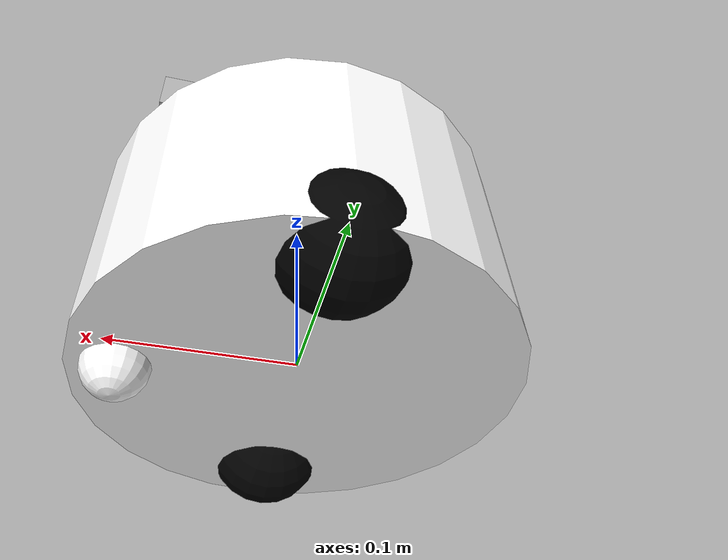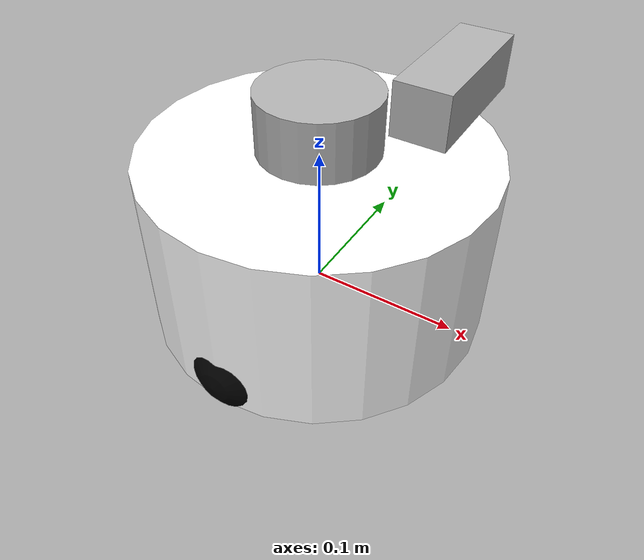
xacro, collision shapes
<?xml version="1.0"?>
<robot xmlns:xacro="http://www.ros.org/wiki/xacro"  name="robot">

    <xacro:arg name="sim_mode" default="false"/>

    <xacro:include filename="robot_core.xacro" />
    <xacro:include filename="ros2_control.xacro" />
    <xacro:include filename="lidar.xacro" />
    <xacro:include filename="camera.xacro" />

</robot>

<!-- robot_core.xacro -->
<robot xmlns:xacro="http://www.ros.org/wiki/xacro" >

    <xacro:include filename="inertial_macros.xacro"/>

    <material name="white">
        <color rgba="1 1 1 1" />
    </material>

    <material name="orange">
        <color rgba="1 0.3 0.1 1"/>
    </material>

    <material name="gray">
        <color rgba="0.7 0.7 0.7 1"/>
    </material>

    <material name="black">
        <color rgba="0 0 0 1"/>
    </material>

    <material name="red">
        <color rgba="1 0 0 1"/>
    </material>

    <!-- BASE LINK -->

    <link name="base_link">

    </link>

    <!-- CHASSIS LINK -->

    <joint name="chassis_joint" type="fixed">
        <parent link="base_link"/>
        <child link="chassis"/>
        <origin xyz="0 0 0"/>
    </joint>

    <link name="chassis">
        <visual>
            <origin xyz="0 0 -0.014" rpy="0 0 ${pi}"/>
            <geometry>
                <mesh filename="file:///$(find dhtbot_one)/meshes/base_link.STL" scale="1 1 1"/>
            </geometry>
            <material name="white"/>
        </visual>
        <collision>
            <origin xyz="0 0 0.045"/>
            <geometry>
                <cylinder radius="0.115" length="0.12"/>
            </geometry>
        </collision>
        <xacro:inertial_cylinder mass="1.0" length="0.12" radius="0.115">
            <origin xyz="0.03 0 0" rpy="0 0 0"/>
        </xacro:inertial_cylinder>
    </link>

    <gazebo reference="chassis">
        <material>Gazebo/White</material>
    </gazebo>

    <!-- LEFT WHEEL LINK -->

    <joint name="left_wheel_joint" type="continuous">
        <parent link="base_link"/>
        <child link="left_wheel"/>
        <origin xyz="0 0.0875 0" rpy="-${pi/2} 0 0"/>
        <axis xyz="0 0 1"/>
    </joint>

    <link name="left_wheel">
        <visual>
            <geometry>
                <cylinder radius="0.0325" length="0.025"/>
            </geometry>
            <material name="black"/>
        </visual>
        <collision>
            <geometry>
                <sphere radius="0.0325"/>
            </geometry>
        </collision>
        <xacro:inertial_sphere mass="0.1" radius="0.0325">
            <origin xyz="0 0 0" rpy="0 0 0"/>
        </xacro:inertial_sphere>
    </link>

    <gazebo reference="left_wheel">
        <material>Gazebo/Black</material>
        <mu1 value="1.0"/>
        <mu2 value="1.0"/>
    </gazebo>

    <!-- RIGHT WHEEL LINK -->

    <joint name="right_wheel_joint" type="continuous">
        <parent link="base_link"/>
        <child link="right_wheel"/>
        <origin xyz="0 -0.0875 0" rpy="${pi/2} 0 0"/>
        <axis xyz="0 0 -1"/>
    </joint>

    <link name="right_wheel">
        <visual>
            <geometry>
                <cylinder radius="0.0325" length="0.025"/>
            </geometry>
            <material name="black"/>
        </visual>
        <collision>
            <geometry>
                <sphere radius="0.0325"/>
            </geometry>
        </collision>
        <xacro:inertial_sphere mass="0.1" radius="0.0325">
            <origin xyz="0 0 0" rpy="0 0 0"/>
        </xacro:inertial_sphere>
    </link>

    <gazebo reference="right_wheel">
        <material>Gazebo/Black</material>
        <mu1 value="1.0"/>
        <mu2 value="1.0"/>
    </gazebo>

    <!-- CASTER WHEEL LINK -->

    <joint name="caster_wheel_joint" type="fixed">
        <parent link="chassis"/>
        <child link="caster_wheel"/>
        <origin xyz="0.09 0 -0.015"/>
    </joint>

    <link name="caster_wheel">
        <visual>
            <geometry>
                <mesh filename="file:///$(find dhtbot_one)/meshes/caster_wheel_link.STL" />-
            </geometry>
            <material name="white"/>
        </visual>
        <collision>
            <geometry>
                <sphere radius="0.0175"/>
            </geometry>
        </collision>
        <xacro:inertial_sphere mass="0.05" radius="0.0175">
            <origin xyz="0 0 0" rpy="0 0 0"/>
        </xacro:inertial_sphere>
    </link>

    <gazebo reference="caster_wheel">
        <material>Gazebo/Black</material>
        <mu1 value="0.001"/>
        <mu2 value="0.001"/>
    </gazebo>

</robot>

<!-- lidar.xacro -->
<robot xmlns:xacro="http://www.ros.org/wiki/xacro" >

    <joint name="laser_joint" type="fixed">
        <parent link="chassis"/>
        <child link="laser_frame"/>
        <origin xyz="0 0 0.13" rpy="0 0 0"/>
    </joint>

    <link name="laser_frame">
        <visual>
            <origin xyz="0 0 0" rpy="0 0 ${pi}"/>
            <geometry>
                <mesh filename="file:///$(find dhtbot_one)/meshes/lds.stl" scale="0.001 0.001 0.001"/>
            </geometry>
            <material name="gray"/>
        </visual>
        <collision>
            <origin xyz="0 0 -0.015"/>
            <geometry>
                <cylinder radius="0.04" length="0.06"/>
            </geometry>
        </collision>
        <xacro:inertial_cylinder mass="0.1" length="0.06" radius="0.04">
            <origin xyz="0 0 0" rpy="0 0 0"/>
        </xacro:inertial_cylinder>
    </link>

    <gazebo reference="laser_frame">
        <material>Gazebo/Gray</material>

        <sensor name="laser" type="ray">
            <pose> 0 0 0 0 0 0 </pose>
            <visualize>false</visualize>
            <update_rate>10</update_rate>
            <ray>
                <scan>
                    <horizontal>
                        <samples>3600</samples>
                        <min_angle>-3.1415</min_angle>
                        <max_angle>3.1415</max_angle>
                    </horizontal>
                </scan>
                <range>
                    <min>0.2</min>
                    <max>12</max>
                </range>
                <noise>
                    <type>gaussian</type>
                    <mean>0</mean>
                    <stddev>0.01</stddev>
                </noise>
            </ray>
            <plugin name="laser_controller" filename="libgazebo_ros_ray_sensor.so">
                <ros>
                    <argument>~/out:=scan</argument>
                </ros>
                <output_type>sensor_msgs/LaserScan</output_type>
                <frame_name>laser_frame</frame_name>
            </plugin>
        </sensor>
    </gazebo>

</robot>

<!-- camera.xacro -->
<robot xmlns:xacro="http://www.ros.org/wiki/xacro" >

    <!-- CAMERA LINK -->

    <joint name="camera_joint" type="fixed">
        <parent link="chassis"/>
        <child link="camera_link"/>
        <origin xyz="0.08 0 0.17"/>
    </joint>

    <link name="camera_link">
        <visual>
            <origin xyz="0 0 -0.01" rpy = "0 0 ${-pi/2}"/>
            <geometry>
                <mesh filename="file:///$(find dhtbot_one)/meshes/intel_realsense_D435.stl" scale="0.001 0.001 0.001"/>
            </geometry>
            <material name="gray"/>
        </visual>
        <collision>
            <origin xyz="0 0 0" />
            <geometry>
                <box size="0.03 0.08 0.03"/>
            </geometry>
        </collision>
        <xacro:inertial_box mass="0.05" x="0.03" y="0.025" z="0.025">
            <origin xyz="0 0 0" rpy="0 0 0"/>
        </xacro:inertial_box>
    </link>

    <joint name="camera_optical_joint" type="fixed">
        <origin xyz="0 0 0" rpy="${-pi/2} 0 ${-pi/2}" />
        <parent link="camera_link" />
        <child link="camera_link_optical" />
    </joint>

    <link name="camera_link_optical"></link>

    <!-- GAZEBO CAMERA PLUGIN -->

    <gazebo reference="camera_link">
        <material>Gazebo/Orange</material>

        <sensor name="camera" type="camera">
            <pose> 0 0 0 0 0 0 </pose>
            <visualize>true</visualize>
            <update_rate>30</update_rate>
            <camera>
                <horizontal_fov>1.3962634</horizontal_fov>
                <image>
                    <format>R8G8B8</format>
                    <width>640</width>
                    <height>480</height>
                </image>
                <clip>
                    <near>0.05</near>
                    <far>18.0</far>
                </clip>
            </camera>
            <plugin name="camera_controller" filename="libgazebo_ros_camera.so">
                <frame_name>camera_link_optical</frame_name>
            </plugin>
        </sensor>
    </gazebo>

</robot>
